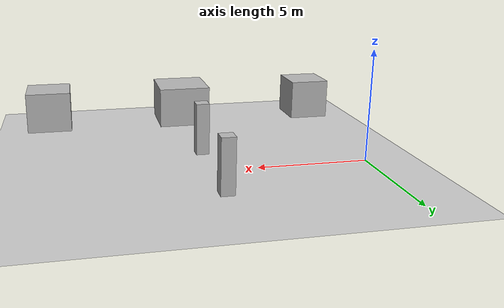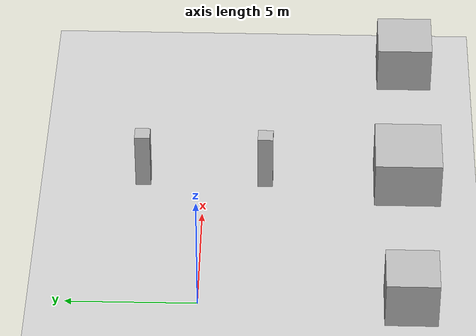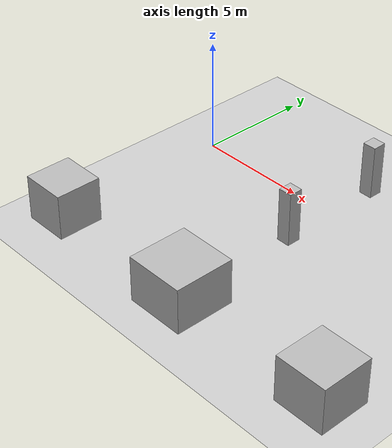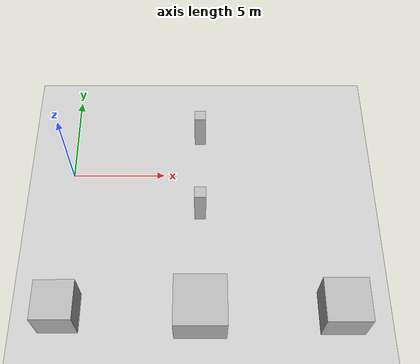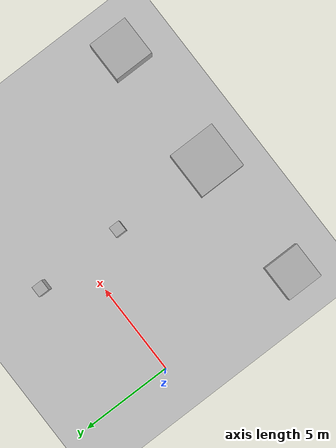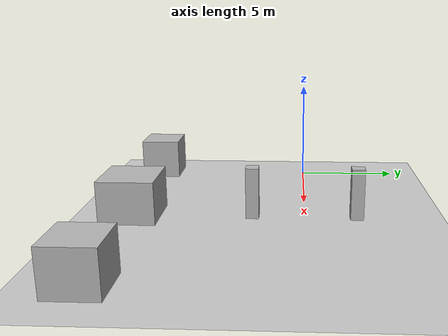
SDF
<sdf version="1.6">
 <world name="default">
  <light name="sun" type="directional">
   <pose>0 0 10 0 -0 0</pose>
   <diffuse>0.8 0.8 0.8 1</diffuse>
   <specular>0.2 0.2 0.2 1</specular>
   <attenuation>
    <range>1000</range>
    <constant>0.9</constant>
    <linear>0.01</linear>
    <quadratic>0.001</quadratic>
   </attenuation>
   <direction>-0.5 0.1 -0.9</direction>
  </light>
  <model name="ground_plane">
   <static>1</static>
   <link name="link">
    <collision name="collision">
     <geometry><plane><normal>0 0 1</normal><size>100 100</size></plane></geometry>
     <surface>
      <contact><collide_bitmask>65535</collide_bitmask></contact>
      <friction><ode><mu>100</mu><mu2>50</mu2></ode></friction>
     </surface>
    </collision>
    <visual name="visual">
     <cast_shadows>0</cast_shadows>
     <geometry><plane><normal>0 0 1</normal><size>100 100</size></plane></geometry>
     <material>
      <script><uri>file://media/materials/scripts/gazebo.material</uri><name>Gazebo/Grey</name></script>
     </material>
    </visual>
   </link>
  </model>
  <physics name="default_physics" default="0" type="ode">
   <ode>
    <solver>
     <type>quick</type>
     <iters>10</iters>
     <sor>1.3</sor>
     <use_dynamic_moi_rescaling>0</use_dynamic_moi_rescaling>
    </solver>
    <constraints>
     <cfm>0</cfm>
     <erp>0.2</erp>
     <contact_max_correcting_vel>100</contact_max_correcting_vel>
     <contact_surface_layer>0.001</contact_surface_layer>
    </constraints>
   </ode>
   <max_step_size>0.004</max_step_size>
   <real_time_factor>1</real_time_factor>
   <real_time_update_rate>250</real_time_update_rate>
  </physics>
  <model name="box0">
   <pose>0.000199 1.20659 1.19976 -9e-06 -1.4e-05 -0.000893</pose>
   <link name="link">
    <pose>7 1.2 0 0 -0 0</pose>
    <collision name="collision"><geometry><box><size>0.6 0.6 2.4</size></box></geometry></collision>
    <visual name="visual"><geometry><box><size>0.6 0.6 2.4</size></box></geometry></visual>
    <inertial>
     <inertia><ixx>1</ixx><ixy>0</ixy><ixz>0</ixz><iyy>1</iyy><iyz>0</iyz><izz>1</izz></inertia>
     <mass>1</mass>
    </inertial>
   </link>
  </model>
  <model name="box00">
   <pose>0.000199 -1.20659 1.19976 -9e-06 -1.4e-05 -0.000893</pose>
   <link name="link">
    <pose>7 -1.2 0 0 -0 0</pose>
    <collision name="collision"><geometry><box><size>0.6 0.6 2.4</size></box></geometry></collision>
    <visual name="visual"><geometry><box><size>0.6 0.6 2.4</size></box></geometry></visual>
    <inertial>
     <inertia><ixx>1</ixx><ixy>0</ixy><ixz>0</ixz><iyy>1</iyy><iyz>0</iyz><izz>1</izz></inertia>
     <mass>1</mass>
    </inertial>
   </link>
  </model>
  <model name="box1">
   <pose>-1e-05 -7.99995 0.999947 -5.3e-05 -0 -5e-06</pose>
   <link name="link">
    <collision name="collision"><geometry><box><size>2 2 2</size></box></geometry></collision>
    <visual name="visual"><geometry><box><size>2 2 2</size></box></geometry></visual>
    <inertial>
     <inertia><ixx>1</ixx><ixy>0</ixy><ixz>0</ixz><iyy>1</iyy><iyz>0</iyz><izz>1</izz></inertia>
     <mass>1</mass>
    </inertial>
   </link>
  </model>
  <model name="box2">
   <pose>7.00003 -7.99997 0.99993 -5.2e-05 -0 -2e-06</pose>
   <link name="link">
    <collision name="collision"><geometry><box><size>2.6 2.6 2</size></box></geometry></collision>
    <visual name="visual"><geometry><box><size>2.6 2.6 2</size></box></geometry></visual>
    <inertial>
     <inertia><ixx>1</ixx><ixy>0</ixy><ixz>0</ixz><iyy>1</iyy><iyz>0</iyz><izz>1</izz></inertia>
     <mass>1</mass>
    </inertial>
   </link>
  </model>
  <model name="box3">
   <pose>14 -7.99995 0.99994 -5.3e-05 -0 -2e-06</pose>
   <link name="link">
    <collision name="collision"><geometry><box><size>2.2 2.2 2</size></box></geometry></collision>
    <visual name="visual"><geometry><box><size>2.2 2.2 2</size></box></geometry></visual>
    <inertial>
     <inertia><ixx>1</ixx><ixy>0</ixy><ixz>0</ixz><iyy>1</iyy><iyz>0</iyz><izz>1</izz></inertia>
     <mass>1</mass>
    </inertial>
   </link>
  </model>
  <gravity>0 0 -9.8066</gravity>
  <magnetic_field>6e-06 2.3e-05 -4.2e-05</magnetic_field>
  <atmosphere type="adiabatic"/>
  <scene><ambient>0.4 0.4 0.4 1</ambient><background>0.7 0.7 0.7 1</background><shadows>1</shadows></scene>
  <audio><device>default</device></audio>
  <spherical_coordinates>
   <surface_model>EARTH_WGS84</surface_model>
   <latitude_deg>0</latitude_deg>
   <longitude_deg>0</longitude_deg>
   <elevation>0</elevation>
   <heading_deg>0</heading_deg>
  </spherical_coordinates>
 </world>
</sdf>
